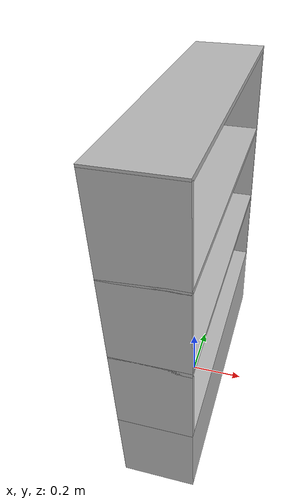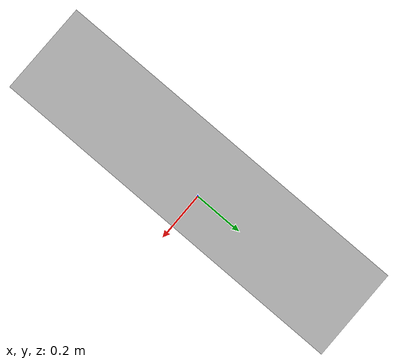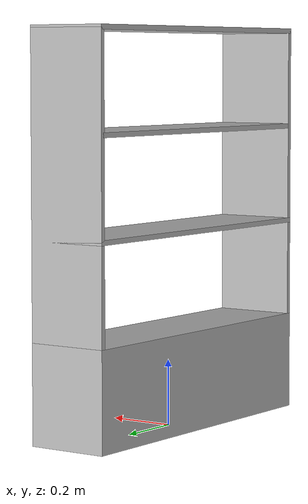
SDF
<sdf version='1.6'>
  <model name='shelf_2'>

  <link name='shelf_body_2'>
  <pose> 0 0 0 0 0 0</pose>

  <visual name='base'>
    <pose> 0 0 0.15 0 0 0</pose>
    <geometry>
      <box>
       <size>0.25 1 0.3</size>
      </box>
    </geometry>
  </visual>

  <visual name='right_wall'>
    <pose> 0 0.4925 0.75 0 0 0</pose>
    <geometry>
      <box>
       <size>0.25 0.015 0.9</size>
      </box>
    </geometry>
  </visual>

  <visual name='left_wall'>
    <pose> 0 -0.4925 0.75 0 0 0</pose>
    <geometry>
      <box>
       <size>0.25 0.015 0.9</size>
      </box>
    </geometry>
  </visual>

  <visual name='shelf_lower'>
    <pose> 0 0 0.6 0 0 0</pose>
    <geometry>
      <box>
       <size>0.25 1 0.015</size>
      </box>
    </geometry>
  </visual>

  <visual name='shelf_upper'>
    <pose> 0 0 0.9 0 0 0</pose>
    <geometry>
      <box>
       <size>0.25 1 0.015</size>
      </box>
    </geometry>
  </visual>

  <visual name='top'>
    <pose> 0 0 1.2 0 0 0</pose>
    <geometry>
      <box>
       <size>0.25 1 0.015</size>
      </box>
    </geometry>
  </visual>

  </link>
  </model>
</sdf>
